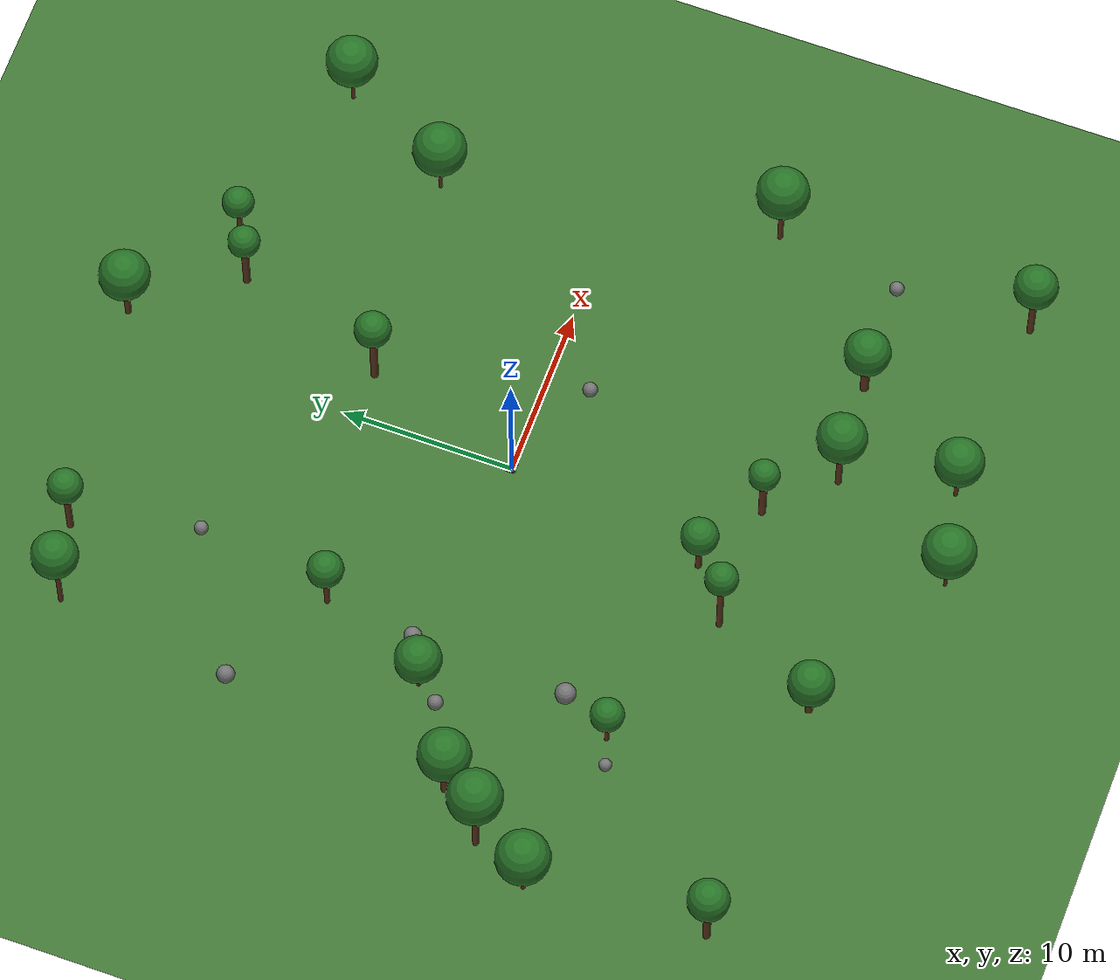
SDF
<?xml version="1.0"?>
<sdf version="1.6">
  <world name="forest_world">
    <include><uri>model://sun</uri></include>

    <scene>
      <ambient>0.5 0.55 0.5 1</ambient>
      <background>0.7 0.8 0.9 1</background>
      <shadows>false</shadows>
    </scene>

    <!-- grass ground -->
    <model name="ground_plane">
      <static>true</static>
      <link name="link">
        <collision name="collision">
          <geometry><plane><normal>0 0 1</normal><size>200 200</size></plane></geometry>
        </collision>
        <visual name="visual">
          <geometry><plane><normal>0 0 1</normal><size>200 200</size></plane></geometry>
          <material>
            <ambient>0.2 0.35 0.15 1</ambient>
            <diffuse>0.25 0.45 0.2 1</diffuse>
          </material>
        </visual>
      </link>
    </model>
    <model name="tree_0">
      <static>true</static>
      <pose>6.97 -23.75 0 0 0 3.69</pose>
      <link name="trunk">
        <pose>0 0 1.66 0 0 0</pose>
        <collision name="c"><geometry><cylinder><radius>0.13</radius><length>3.33</length></cylinder></geometry></collision>
        <visual name="v"><geometry><cylinder><radius>0.13</radius><length>3.33</length></cylinder></geometry>
          <material><ambient>0.25 0.15 0.08 1</ambient><diffuse>0.35 0.2 0.1 1</diffuse></material></visual>
      </link>
      <link name="canopy">
        <pose>0 0 4.17 0 0 0</pose>
        <visual name="v"><geometry><sphere><radius>1.42</radius></sphere></geometry>
          <material><ambient>0.1 0.3 0.1 1</ambient><diffuse>0.15 0.45 0.15 1</diffuse></material></visual>
      </link>
    </model>
    <model name="tree_1">
      <static>true</static>
      <pose>8.83 19.61 0 0 0 1.45</pose>
      <link name="trunk">
        <pose>0 0 1.38 0 0 0</pose>
        <collision name="c"><geometry><cylinder><radius>0.16</radius><length>2.76</length></cylinder></geometry></collision>
        <visual name="v"><geometry><cylinder><radius>0.16</radius><length>2.76</length></cylinder></geometry>
          <material><ambient>0.25 0.15 0.08 1</ambient><diffuse>0.35 0.2 0.1 1</diffuse></material></visual>
      </link>
      <link name="canopy">
        <pose>0 0 3.31 0 0 0</pose>
        <visual name="v"><geometry><sphere><radius>0.92</radius></sphere></geometry>
          <material><ambient>0.1 0.3 0.1 1</ambient><diffuse>0.15 0.45 0.15 1</diffuse></material></visual>
      </link>
    </model>
    <model name="tree_2">
      <static>true</static>
      <pose>-14.07 0.27 0 0 0 1.38</pose>
      <link name="trunk">
        <pose>0 0 1.29 0 0 0</pose>
        <collision name="c"><geometry><cylinder><radius>0.13</radius><length>2.58</length></cylinder></geometry></collision>
        <visual name="v"><geometry><cylinder><radius>0.13</radius><length>2.58</length></cylinder></geometry>
          <material><ambient>0.25 0.15 0.08 1</ambient><diffuse>0.35 0.2 0.1 1</diffuse></material></visual>
      </link>
      <link name="canopy">
        <pose>0 0 3.39 0 0 0</pose>
        <visual name="v"><geometry><sphere><radius>1.35</radius></sphere></geometry>
          <material><ambient>0.1 0.3 0.1 1</ambient><diffuse>0.15 0.45 0.15 1</diffuse></material></visual>
      </link>
    </model>
    <model name="tree_3">
      <static>true</static>
      <pose>2.25 -13.98 0 0 0 0.45</pose>
      <link name="trunk">
        <pose>0 0 2.13 0 0 0</pose>
        <collision name="c"><geometry><cylinder><radius>0.22</radius><length>4.27</length></cylinder></geometry></collision>
        <visual name="v"><geometry><cylinder><radius>0.22</radius><length>4.27</length></cylinder></geometry>
          <material><ambient>0.25 0.15 0.08 1</ambient><diffuse>0.35 0.2 0.1 1</diffuse></material></visual>
      </link>
      <link name="canopy">
        <pose>0 0 4.81 0 0 0</pose>
        <visual name="v"><geometry><sphere><radius>0.90</radius></sphere></geometry>
          <material><ambient>0.1 0.3 0.1 1</ambient><diffuse>0.15 0.45 0.15 1</diffuse></material></visual>
      </link>
    </model>
    <model name="tree_4">
      <static>true</static>
      <pose>15.29 9.91 0 0 0 3.96</pose>
      <link name="trunk">
        <pose>0 0 1.76 0 0 0</pose>
        <collision name="c"><geometry><cylinder><radius>0.12</radius><length>3.52</length></cylinder></geometry></collision>
        <visual name="v"><geometry><cylinder><radius>0.12</radius><length>3.52</length></cylinder></geometry>
          <material><ambient>0.25 0.15 0.08 1</ambient><diffuse>0.35 0.2 0.1 1</diffuse></material></visual>
      </link>
      <link name="canopy">
        <pose>0 0 4.46 0 0 0</pose>
        <visual name="v"><geometry><sphere><radius>1.57</radius></sphere></geometry>
          <material><ambient>0.1 0.3 0.1 1</ambient><diffuse>0.15 0.45 0.15 1</diffuse></material></visual>
      </link>
    </model>
    <model name="tree_5">
      <static>true</static>
      <pose>-8.17 -20.36 0 0 0 1.44</pose>
      <link name="trunk">
        <pose>0 0 1.40 0 0 0</pose>
        <collision name="c"><geometry><cylinder><radius>0.23</radius><length>2.79</length></cylinder></geometry></collision>
        <visual name="v"><geometry><cylinder><radius>0.23</radius><length>2.79</length></cylinder></geometry>
          <material><ambient>0.25 0.15 0.08 1</ambient><diffuse>0.35 0.2 0.1 1</diffuse></material></visual>
      </link>
      <link name="canopy">
        <pose>0 0 3.58 0 0 0</pose>
        <visual name="v"><geometry><sphere><radius>1.32</radius></sphere></geometry>
          <material><ambient>0.1 0.3 0.1 1</ambient><diffuse>0.15 0.45 0.15 1</diffuse></material></visual>
      </link>
    </model>
    <model name="tree_6">
      <static>true</static>
      <pose>1.81 23.66 0 0 0 5.69</pose>
      <link name="trunk">
        <pose>0 0 1.82 0 0 0</pose>
        <collision name="c"><geometry><cylinder><radius>0.18</radius><length>3.64</length></cylinder></geometry></collision>
        <visual name="v"><geometry><cylinder><radius>0.18</radius><length>3.64</length></cylinder></geometry>
          <material><ambient>0.25 0.15 0.08 1</ambient><diffuse>0.35 0.2 0.1 1</diffuse></material></visual>
      </link>
      <link name="canopy">
        <pose>0 0 4.52 0 0 0</pose>
        <visual name="v"><geometry><sphere><radius>1.48</radius></sphere></geometry>
          <material><ambient>0.1 0.3 0.1 1</ambient><diffuse>0.15 0.45 0.15 1</diffuse></material></visual>
      </link>
    </model>
    <model name="tree_7">
      <static>true</static>
      <pose>5.93 18.09 0 0 0 5.40</pose>
      <link name="trunk">
        <pose>0 0 2.12 0 0 0</pose>
        <collision name="c"><geometry><cylinder><radius>0.21</radius><length>4.23</length></cylinder></geometry></collision>
        <visual name="v"><geometry><cylinder><radius>0.21</radius><length>4.23</length></cylinder></geometry>
          <material><ambient>0.25 0.15 0.08 1</ambient><diffuse>0.35 0.2 0.1 1</diffuse></material></visual>
      </link>
      <link name="canopy">
        <pose>0 0 4.79 0 0 0</pose>
        <visual name="v"><geometry><sphere><radius>0.93</radius></sphere></geometry>
          <material><ambient>0.1 0.3 0.1 1</ambient><diffuse>0.15 0.45 0.15 1</diffuse></material></visual>
      </link>
    </model>
    <model name="tree_8">
      <static>true</static>
      <pose>-13.61 -10.53 0 0 0 0.44</pose>
      <link name="trunk">
        <pose>0 0 1.37 0 0 0</pose>
        <collision name="c"><geometry><cylinder><radius>0.13</radius><length>2.74</length></cylinder></geometry></collision>
        <visual name="v"><geometry><cylinder><radius>0.13</radius><length>2.74</length></cylinder></geometry>
          <material><ambient>0.25 0.15 0.08 1</ambient><diffuse>0.35 0.2 0.1 1</diffuse></material></visual>
      </link>
      <link name="canopy">
        <pose>0 0 3.32 0 0 0</pose>
        <visual name="v"><geometry><sphere><radius>0.97</radius></sphere></geometry>
          <material><ambient>0.1 0.3 0.1 1</ambient><diffuse>0.15 0.45 0.15 1</diffuse></material></visual>
      </link>
    </model>
    <model name="tree_9">
      <static>true</static>
      <pose>-11.10 6.78 0 0 0 1.49</pose>
      <link name="trunk">
        <pose>0 0 1.80 0 0 0</pose>
        <collision name="c"><geometry><cylinder><radius>0.16</radius><length>3.59</length></cylinder></geometry></collision>
        <visual name="v"><geometry><cylinder><radius>0.16</radius><length>3.59</length></cylinder></geometry>
          <material><ambient>0.25 0.15 0.08 1</ambient><diffuse>0.35 0.2 0.1 1</diffuse></material></visual>
      </link>
      <link name="canopy">
        <pose>0 0 4.22 0 0 0</pose>
        <visual name="v"><geometry><sphere><radius>1.05</radius></sphere></geometry>
          <material><ambient>0.1 0.3 0.1 1</ambient><diffuse>0.15 0.45 0.15 1</diffuse></material></visual>
      </link>
    </model>
    <model name="tree_10">
      <static>true</static>
      <pose>-11.65 21.83 0 0 0 4.20</pose>
      <link name="trunk">
        <pose>0 0 2.22 0 0 0</pose>
        <collision name="c"><geometry><cylinder><radius>0.19</radius><length>4.44</length></cylinder></geometry></collision>
        <visual name="v"><geometry><cylinder><radius>0.19</radius><length>4.44</length></cylinder></geometry>
          <material><ambient>0.25 0.15 0.08 1</ambient><diffuse>0.35 0.2 0.1 1</diffuse></material></visual>
      </link>
      <link name="canopy">
        <pose>0 0 5.06 0 0 0</pose>
        <visual name="v"><geometry><sphere><radius>1.02</radius></sphere></geometry>
          <material><ambient>0.1 0.3 0.1 1</ambient><diffuse>0.15 0.45 0.15 1</diffuse></material></visual>
      </link>
    </model>
    <model name="tree_11">
      <static>true</static>
      <pose>11.46 -16.83 0 0 0 1.35</pose>
      <link name="trunk">
        <pose>0 0 1.82 0 0 0</pose>
        <collision name="c"><geometry><cylinder><radius>0.25</radius><length>3.64</length></cylinder></geometry></collision>
        <visual name="v"><geometry><cylinder><radius>0.25</radius><length>3.64</length></cylinder></geometry>
          <material><ambient>0.25 0.15 0.08 1</ambient><diffuse>0.35 0.2 0.1 1</diffuse></material></visual>
      </link>
      <link name="canopy">
        <pose>0 0 4.45 0 0 0</pose>
        <visual name="v"><geometry><sphere><radius>1.35</radius></sphere></geometry>
          <material><ambient>0.1 0.3 0.1 1</ambient><diffuse>0.15 0.45 0.15 1</diffuse></material></visual>
      </link>
    </model>
    <model name="tree_12">
      <static>true</static>
      <pose>2.85 9.23 0 0 0 0.83</pose>
      <link name="trunk">
        <pose>0 0 2.51 0 0 0</pose>
        <collision name="c"><geometry><cylinder><radius>0.22</radius><length>5.03</length></cylinder></geometry></collision>
        <visual name="v"><geometry><cylinder><radius>0.22</radius><length>5.03</length></cylinder></geometry>
          <material><ambient>0.25 0.15 0.08 1</ambient><diffuse>0.35 0.2 0.1 1</diffuse></material></visual>
      </link>
      <link name="canopy">
        <pose>0 0 5.66 0 0 0</pose>
        <visual name="v"><geometry><sphere><radius>1.06</radius></sphere></geometry>
          <material><ambient>0.1 0.3 0.1 1</ambient><diffuse>0.15 0.45 0.15 1</diffuse></material></visual>
      </link>
    </model>
    <model name="tree_13">
      <static>true</static>
      <pose>-23.39 -9.23 0 0 0 5.88</pose>
      <link name="trunk">
        <pose>0 0 1.65 0 0 0</pose>
        <collision name="c"><geometry><cylinder><radius>0.13</radius><length>3.30</length></cylinder></geometry></collision>
        <visual name="v"><geometry><cylinder><radius>0.13</radius><length>3.30</length></cylinder></geometry>
          <material><ambient>0.25 0.15 0.08 1</ambient><diffuse>0.35 0.2 0.1 1</diffuse></material></visual>
      </link>
      <link name="canopy">
        <pose>0 0 4.24 0 0 0</pose>
        <visual name="v"><geometry><sphere><radius>1.56</radius></sphere></geometry>
          <material><ambient>0.1 0.3 0.1 1</ambient><diffuse>0.15 0.45 0.15 1</diffuse></material></visual>
      </link>
    </model>
    <model name="tree_14">
      <static>true</static>
      <pose>18.82 -9.27 0 0 0 3.59</pose>
      <link name="trunk">
        <pose>0 0 2.23 0 0 0</pose>
        <collision name="c"><geometry><cylinder><radius>0.16</radius><length>4.47</length></cylinder></geometry></collision>
        <visual name="v"><geometry><cylinder><radius>0.16</radius><length>4.47</length></cylinder></geometry>
          <material><ambient>0.25 0.15 0.08 1</ambient><diffuse>0.35 0.2 0.1 1</diffuse></material></visual>
      </link>
      <link name="canopy">
        <pose>0 0 5.39 0 0 0</pose>
        <visual name="v"><geometry><sphere><radius>1.54</radius></sphere></geometry>
          <material><ambient>0.1 0.3 0.1 1</ambient><diffuse>0.15 0.45 0.15 1</diffuse></material></visual>
      </link>
    </model>
    <model name="tree_15">
      <static>true</static>
      <pose>-2.06 -11.76 0 0 0 2.97</pose>
      <link name="trunk">
        <pose>0 0 1.62 0 0 0</pose>
        <collision name="c"><geometry><cylinder><radius>0.18</radius><length>3.24</length></cylinder></geometry></collision>
        <visual name="v"><geometry><cylinder><radius>0.18</radius><length>3.24</length></cylinder></geometry>
          <material><ambient>0.25 0.15 0.08 1</ambient><diffuse>0.35 0.2 0.1 1</diffuse></material></visual>
      </link>
      <link name="canopy">
        <pose>0 0 3.89 0 0 0</pose>
        <visual name="v"><geometry><sphere><radius>1.08</radius></sphere></geometry>
          <material><ambient>0.1 0.3 0.1 1</ambient><diffuse>0.15 0.45 0.15 1</diffuse></material></visual>
      </link>
    </model>
    <model name="tree_16">
      <static>true</static>
      <pose>-5.03 -14.03 0 0 0 4.93</pose>
      <link name="trunk">
        <pose>0 0 2.75 0 0 0</pose>
        <collision name="c"><geometry><cylinder><radius>0.18</radius><length>5.49</length></cylinder></geometry></collision>
        <visual name="v"><geometry><cylinder><radius>0.18</radius><length>5.49</length></cylinder></geometry>
          <material><ambient>0.25 0.15 0.08 1</ambient><diffuse>0.35 0.2 0.1 1</diffuse></material></visual>
      </link>
      <link name="canopy">
        <pose>0 0 6.07 0 0 0</pose>
        <visual name="v"><geometry><sphere><radius>0.96</radius></sphere></geometry>
          <material><ambient>0.1 0.3 0.1 1</ambient><diffuse>0.15 0.45 0.15 1</diffuse></material></visual>
      </link>
    </model>
    <model name="tree_17">
      <static>true</static>
      <pose>-22.64 -19.52 0 0 0 5.07</pose>
      <link name="trunk">
        <pose>0 0 2.19 0 0 0</pose>
        <collision name="c"><geometry><cylinder><radius>0.22</radius><length>4.38</length></cylinder></geometry></collision>
        <visual name="v"><geometry><cylinder><radius>0.22</radius><length>4.38</length></cylinder></geometry>
          <material><ambient>0.25 0.15 0.08 1</ambient><diffuse>0.35 0.2 0.1 1</diffuse></material></visual>
      </link>
      <link name="canopy">
        <pose>0 0 5.10 0 0 0</pose>
        <visual name="v"><geometry><sphere><radius>1.20</radius></sphere></geometry>
          <material><ambient>0.1 0.3 0.1 1</ambient><diffuse>0.15 0.45 0.15 1</diffuse></material></visual>
      </link>
    </model>
    <model name="tree_18">
      <static>true</static>
      <pose>-21.82 -5.92 0 0 0 1.20</pose>
      <link name="trunk">
        <pose>0 0 2.74 0 0 0</pose>
        <collision name="c"><geometry><cylinder><radius>0.18</radius><length>5.49</length></cylinder></geometry></collision>
        <visual name="v"><geometry><cylinder><radius>0.18</radius><length>5.49</length></cylinder></geometry>
          <material><ambient>0.25 0.15 0.08 1</ambient><diffuse>0.35 0.2 0.1 1</diffuse></material></visual>
      </link>
      <link name="canopy">
        <pose>0 0 6.44 0 0 0</pose>
        <visual name="v"><geometry><sphere><radius>1.58</radius></sphere></geometry>
          <material><ambient>0.1 0.3 0.1 1</ambient><diffuse>0.15 0.45 0.15 1</diffuse></material></visual>
      </link>
    </model>
    <model name="tree_19">
      <static>true</static>
      <pose>18.04 -24.43 0 0 0 0.61</pose>
      <link name="trunk">
        <pose>0 0 2.33 0 0 0</pose>
        <collision name="c"><geometry><cylinder><radius>0.20</radius><length>4.66</length></cylinder></geometry></collision>
        <visual name="v"><geometry><cylinder><radius>0.20</radius><length>4.66</length></cylinder></geometry>
          <material><ambient>0.25 0.15 0.08 1</ambient><diffuse>0.35 0.2 0.1 1</diffuse></material></visual>
      </link>
      <link name="canopy">
        <pose>0 0 5.43 0 0 0</pose>
        <visual name="v"><geometry><sphere><radius>1.28</radius></sphere></geometry>
          <material><ambient>0.1 0.3 0.1 1</ambient><diffuse>0.15 0.45 0.15 1</diffuse></material></visual>
      </link>
    </model>
    <model name="tree_20">
      <static>true</static>
      <pose>-19.42 -3.26 0 0 0 2.71</pose>
      <link name="trunk">
        <pose>0 0 1.93 0 0 0</pose>
        <collision name="c"><geometry><cylinder><radius>0.24</radius><length>3.86</length></cylinder></geometry></collision>
        <visual name="v"><geometry><cylinder><radius>0.24</radius><length>3.86</length></cylinder></geometry>
          <material><ambient>0.25 0.15 0.08 1</ambient><diffuse>0.35 0.2 0.1 1</diffuse></material></visual>
      </link>
      <link name="canopy">
        <pose>0 0 4.77 0 0 0</pose>
        <visual name="v"><geometry><sphere><radius>1.51</radius></sphere></geometry>
          <material><ambient>0.1 0.3 0.1 1</ambient><diffuse>0.15 0.45 0.15 1</diffuse></material></visual>
      </link>
    </model>
    <model name="tree_21">
      <static>true</static>
      <pose>-16.07 20.63 0 0 0 2.66</pose>
      <link name="trunk">
        <pose>0 0 2.56 0 0 0</pose>
        <collision name="c"><geometry><cylinder><radius>0.14</radius><length>5.11</length></cylinder></geometry></collision>
        <visual name="v"><geometry><cylinder><radius>0.14</radius><length>5.11</length></cylinder></geometry>
          <material><ambient>0.25 0.15 0.08 1</ambient><diffuse>0.35 0.2 0.1 1</diffuse></material></visual>
      </link>
      <link name="canopy">
        <pose>0 0 5.92 0 0 0</pose>
        <visual name="v"><geometry><sphere><radius>1.35</radius></sphere></geometry>
          <material><ambient>0.1 0.3 0.1 1</ambient><diffuse>0.15 0.45 0.15 1</diffuse></material></visual>
      </link>
    </model>
    <model name="tree_22">
      <static>true</static>
      <pose>5.45 -17.36 0 0 0 2.93</pose>
      <link name="trunk">
        <pose>0 0 2.39 0 0 0</pose>
        <collision name="c"><geometry><cylinder><radius>0.18</radius><length>4.79</length></cylinder></geometry></collision>
        <visual name="v"><geometry><cylinder><radius>0.18</radius><length>4.79</length></cylinder></geometry>
          <material><ambient>0.25 0.15 0.08 1</ambient><diffuse>0.35 0.2 0.1 1</diffuse></material></visual>
      </link>
      <link name="canopy">
        <pose>0 0 5.65 0 0 0</pose>
        <visual name="v"><geometry><sphere><radius>1.45</radius></sphere></geometry>
          <material><ambient>0.1 0.3 0.1 1</ambient><diffuse>0.15 0.45 0.15 1</diffuse></material></visual>
      </link>
    </model>
    <model name="tree_23">
      <static>true</static>
      <pose>1.52 -24.97 0 0 0 4.58</pose>
      <link name="trunk">
        <pose>0 0 1.74 0 0 0</pose>
        <collision name="c"><geometry><cylinder><radius>0.10</radius><length>3.47</length></cylinder></geometry></collision>
        <visual name="v"><geometry><cylinder><radius>0.10</radius><length>3.47</length></cylinder></geometry>
          <material><ambient>0.25 0.15 0.08 1</ambient><diffuse>0.35 0.2 0.1 1</diffuse></material></visual>
      </link>
      <link name="canopy">
        <pose>0 0 4.40 0 0 0</pose>
        <visual name="v"><geometry><sphere><radius>1.55</radius></sphere></geometry>
          <material><ambient>0.1 0.3 0.1 1</ambient><diffuse>0.15 0.45 0.15 1</diffuse></material></visual>
      </link>
    </model>
    <model name="tree_24">
      <static>true</static>
      <pose>18.94 16.58 0 0 0 4.23</pose>
      <link name="trunk">
        <pose>0 0 1.71 0 0 0</pose>
        <collision name="c"><geometry><cylinder><radius>0.11</radius><length>3.42</length></cylinder></geometry></collision>
        <visual name="v"><geometry><cylinder><radius>0.11</radius><length>3.42</length></cylinder></geometry>
          <material><ambient>0.25 0.15 0.08 1</ambient><diffuse>0.35 0.2 0.1 1</diffuse></material></visual>
      </link>
      <link name="canopy">
        <pose>0 0 4.33 0 0 0</pose>
        <visual name="v"><geometry><sphere><radius>1.51</radius></sphere></geometry>
          <material><ambient>0.1 0.3 0.1 1</ambient><diffuse>0.15 0.45 0.15 1</diffuse></material></visual>
      </link>
    </model>
    <model name="rock_0">
      <static>true</static>
      <pose>17.88 -16.57 0.21 0 0 0</pose>
      <link name="link">
        <collision name="c"><geometry><sphere><radius>0.42</radius></sphere></geometry></collision>
        <visual name="v"><geometry><sphere><radius>0.42</radius></sphere></geometry>
          <material><ambient>0.35 0.35 0.35 1</ambient><diffuse>0.45 0.45 0.45 1</diffuse></material></visual>
      </link>
    </model>
    <model name="rock_1">
      <static>true</static>
      <pose>-17.23 10.42 0.26 0 0 0</pose>
      <link name="link">
        <collision name="c"><geometry><sphere><radius>0.52</radius></sphere></geometry></collision>
        <visual name="v"><geometry><sphere><radius>0.52</radius></sphere></geometry>
          <material><ambient>0.35 0.35 0.35 1</ambient><diffuse>0.45 0.45 0.45 1</diffuse></material></visual>
      </link>
    </model>
    <model name="rock_2">
      <static>true</static>
      <pose>-14.86 -0.99 0.22 0 0 0</pose>
      <link name="link">
        <collision name="c"><geometry><sphere><radius>0.44</radius></sphere></geometry></collision>
        <visual name="v"><geometry><sphere><radius>0.44</radius></sphere></geometry>
          <material><ambient>0.35 0.35 0.35 1</ambient><diffuse>0.45 0.45 0.45 1</diffuse></material></visual>
      </link>
    </model>
    <model name="rock_3">
      <static>true</static>
      <pose>-9.40 14.90 0.20 0 0 0</pose>
      <link name="link">
        <collision name="c"><geometry><sphere><radius>0.40</radius></sphere></geometry></collision>
        <visual name="v"><geometry><sphere><radius>0.40</radius></sphere></geometry>
          <material><ambient>0.35 0.35 0.35 1</ambient><diffuse>0.45 0.45 0.45 1</diffuse></material></visual>
      </link>
    </model>
    <model name="rock_4">
      <static>true</static>
      <pose>-11.53 1.57 0.25 0 0 0</pose>
      <link name="link">
        <collision name="c"><geometry><sphere><radius>0.51</radius></sphere></geometry></collision>
        <visual name="v"><geometry><sphere><radius>0.51</radius></sphere></geometry>
          <material><ambient>0.35 0.35 0.35 1</ambient><diffuse>0.45 0.45 0.45 1</diffuse></material></visual>
      </link>
    </model>
    <model name="rock_5">
      <static>true</static>
      <pose>-11.95 -7.53 0.30 0 0 0</pose>
      <link name="link">
        <collision name="c"><geometry><sphere><radius>0.60</radius></sphere></geometry></collision>
        <visual name="v"><geometry><sphere><radius>0.60</radius></sphere></geometry>
          <material><ambient>0.35 0.35 0.35 1</ambient><diffuse>0.45 0.45 0.45 1</diffuse></material></visual>
      </link>
    </model>
    <model name="rock_6">
      <static>true</static>
      <pose>6.00 -2.48 0.22 0 0 0</pose>
      <link name="link">
        <collision name="c"><geometry><sphere><radius>0.43</radius></sphere></geometry></collision>
        <visual name="v"><geometry><sphere><radius>0.43</radius></sphere></geometry>
          <material><ambient>0.35 0.35 0.35 1</ambient><diffuse>0.45 0.45 0.45 1</diffuse></material></visual>
      </link>
    </model>
    <model name="rock_7">
      <static>true</static>
      <pose>-15.16 -11.01 0.18 0 0 0</pose>
      <link name="link">
        <collision name="c"><geometry><sphere><radius>0.37</radius></sphere></geometry></collision>
        <visual name="v"><geometry><sphere><radius>0.37</radius></sphere></geometry>
          <material><ambient>0.35 0.35 0.35 1</ambient><diffuse>0.45 0.45 0.45 1</diffuse></material></visual>
      </link>
    </model>

    <!-- Spawn rover at origin (clearing) -->
    <include>
      <uri>model://livo2_rover</uri>
      <pose>0 0 0.15 0 0 0</pose>
    </include>

  </world>
</sdf>

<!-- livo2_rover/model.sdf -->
<sdf version="1.6">
  <model name="livo2_rover">
    <static>false</static>

    <!-- ==================== CHASSIS ==================== -->
    <link name="base_link">
      <inertial>
        <mass>10.0</mass>
        <inertia>
          <ixx>0.5</ixx><ixy>0</ixy><ixz>0</ixz>
          <iyy>1.0</iyy><iyz>0</iyz>
          <izz>0.5</izz>
        </inertia>
      </inertial>
      <collision name="chassis_collision">
        <geometry>
          <box><size>0.6 0.4 0.15</size></box>
        </geometry>
      </collision>
      <visual name="chassis_visual">
        <geometry>
          <box><size>0.6 0.4 0.15</size></box>
        </geometry>
        <material>
          <ambient>0.2 0.2 0.2 1</ambient>
          <diffuse>0.3 0.3 0.3 1</diffuse>
        </material>
      </visual>

      <!-- ==================== IMU SENSOR ==================== -->
      <sensor name="imu_sensor" type="imu">
        <always_on>true</always_on>
        <update_rate>200</update_rate>
        <imu>
          <angular_velocity>
            <x><noise type="gaussian"><mean>0.0</mean><stddev>0.003</stddev></noise></x>
            <y><noise type="gaussian"><mean>0.0</mean><stddev>0.003</stddev></noise></y>
            <z><noise type="gaussian"><mean>0.0</mean><stddev>0.003</stddev></noise></z>
          </angular_velocity>
          <linear_acceleration>
            <x><noise type="gaussian"><mean>0.0</mean><stddev>0.05</stddev></noise></x>
            <y><noise type="gaussian"><mean>0.0</mean><stddev>0.05</stddev></noise></y>
            <z><noise type="gaussian"><mean>0.0</mean><stddev>0.05</stddev></noise></z>
          </linear_acceleration>
        </imu>
        <plugin name="imu_plugin" filename="libgazebo_ros_imu_sensor.so">
          <topicName>/rover/imu</topicName>
          <bodyName>base_link</bodyName>
          <frameName>base_link</frameName>
          <updateRateHZ>200.0</updateRateHZ>
          <gaussianNoise>0.0</gaussianNoise>
          <xyzOffset>0 0 0</xyzOffset>
          <rpyOffset>0 0 0</rpyOffset>
        </plugin>
      </sensor>
    </link>

    <!-- ==================== WHEELS ==================== -->
    <!-- Front left wheel -->
    <link name="front_left_wheel">
      <pose>0.2 0.25 -0.05 -1.5708 0 0</pose>
      <inertial>
        <mass>0.5</mass>
        <inertia>
          <ixx>0.001</ixx><ixy>0</ixy><ixz>0</ixz>
          <iyy>0.001</iyy><iyz>0</iyz><izz>0.001</izz>
        </inertia>
      </inertial>
      <collision name="collision">
        <geometry><cylinder><radius>0.1</radius><length>0.05</length></cylinder></geometry>
        <surface>
          <friction><ode><mu>1.0</mu><mu2>1.0</mu2></ode></friction>
        </surface>
      </collision>
      <visual name="visual">
        <geometry><cylinder><radius>0.1</radius><length>0.05</length></cylinder></geometry>
        <material><ambient>0.1 0.1 0.1 1</ambient></material>
      </visual>
    </link>
    <joint name="front_left_wheel_joint" type="revolute">
      <parent>base_link</parent>
      <child>front_left_wheel</child>
      <axis><xyz>0 0 1</xyz></axis>
    </joint>

    <!-- Front right wheel -->
    <link name="front_right_wheel">
      <pose>0.2 -0.25 -0.05 -1.5708 0 0</pose>
      <inertial>
        <mass>0.5</mass>
        <inertia>
          <ixx>0.001</ixx><ixy>0</ixy><ixz>0</ixz>
          <iyy>0.001</iyy><iyz>0</iyz><izz>0.001</izz>
        </inertia>
      </inertial>
      <collision name="collision">
        <geometry><cylinder><radius>0.1</radius><length>0.05</length></cylinder></geometry>
        <surface>
          <friction><ode><mu>1.0</mu><mu2>1.0</mu2></ode></friction>
        </surface>
      </collision>
      <visual name="visual">
        <geometry><cylinder><radius>0.1</radius><length>0.05</length></cylinder></geometry>
        <material><ambient>0.1 0.1 0.1 1</ambient></material>
      </visual>
    </link>
    <joint name="front_right_wheel_joint" type="revolute">
      <parent>base_link</parent>
      <child>front_right_wheel</child>
      <axis><xyz>0 0 1</xyz></axis>
    </joint>

    <!-- Rear left wheel -->
    <link name="rear_left_wheel">
      <pose>-0.2 0.25 -0.05 -1.5708 0 0</pose>
      <inertial>
        <mass>0.5</mass>
        <inertia>
          <ixx>0.001</ixx><ixy>0</ixy><ixz>0</ixz>
          <iyy>0.001</iyy><iyz>0</iyz><izz>0.001</izz>
        </inertia>
      </inertial>
      <collision name="collision">
        <geometry><cylinder><radius>0.1</radius><length>0.05</length></cylinder></geometry>
        <surface>
          <friction><ode><mu>1.0</mu><mu2>1.0</mu2></ode></friction>
        </surface>
      </collision>
      <visual name="visual">
        <geometry><cylinder><radius>0.1</radius><length>0.05</length></cylinder></geometry>
        <material><ambient>0.1 0.1 0.1 1</ambient></material>
      </visual>
    </link>
    <joint name="rear_left_wheel_joint" type="revolute">
      <parent>base_link</parent>
      <child>rear_left_wheel</child>
      <axis><xyz>0 0 1</xyz></axis>
    </joint>

    <!-- Rear right wheel -->
    <link name="rear_right_wheel">
      <pose>-0.2 -0.25 -0.05 -1.5708 0 0</pose>
      <inertial>
        <mass>0.5</mass>
        <inertia>
          <ixx>0.001</ixx><ixy>0</ixy><ixz>0</ixz>
          <iyy>0.001</iyy><iyz>0</iyz><izz>0.001</izz>
        </inertia>
      </inertial>
      <collision name="collision">
        <geometry><cylinder><radius>0.1</radius><length>0.05</length></cylinder></geometry>
        <surface>
          <friction><ode><mu>1.0</mu><mu2>1.0</mu2></ode></friction>
        </surface>
      </collision>
      <visual name="visual">
        <geometry><cylinder><radius>0.1</radius><length>0.05</length></cylinder></geometry>
        <material><ambient>0.1 0.1 0.1 1</ambient></material>
      </visual>
    </link>
    <joint name="rear_right_wheel_joint" type="revolute">
      <parent>base_link</parent>
      <child>rear_right_wheel</child>
      <axis><xyz>0 0 1</xyz></axis>
    </joint>

    <!-- Differential drive plugin (ROS1 Noetic syntax) -->
    <plugin name="diff_drive" filename="libgazebo_ros_diff_drive.so">
      <updateRate>100</updateRate>
      <leftJoint>front_left_wheel_joint</leftJoint>
      <rightJoint>front_right_wheel_joint</rightJoint>
      <wheelSeparation>0.5</wheelSeparation>
      <wheelDiameter>0.2</wheelDiameter>
      <wheelTorque>20</wheelTorque>
      <wheelAcceleration>1.0</wheelAcceleration>
      <commandTopic>/rover/cmd_vel</commandTopic>
      <odometryTopic>/rover/odom</odometryTopic>
      <odometryFrame>odom</odometryFrame>
      <robotBaseFrame>base_link</robotBaseFrame>
      <publishOdom>true</publishOdom>
      <publishOdomTF>true</publishOdomTF>
      <publishWheelTF>false</publishWheelTF>
      <publishWheelJointState>false</publishWheelJointState>
      <legacyMode>false</legacyMode>
    </plugin>

    <!-- Second diff drive for rear wheels (slaved to front) -->
    <plugin name="rear_diff_drive" filename="libgazebo_ros_diff_drive.so">
      <updateRate>100</updateRate>
      <leftJoint>rear_left_wheel_joint</leftJoint>
      <rightJoint>rear_right_wheel_joint</rightJoint>
      <wheelSeparation>0.5</wheelSeparation>
      <wheelDiameter>0.2</wheelDiameter>
      <wheelTorque>20</wheelTorque>
      <wheelAcceleration>1.0</wheelAcceleration>
      <commandTopic>/rover/cmd_vel</commandTopic>
      <odometryTopic>/rover/rear_odom</odometryTopic>
      <odometryFrame>odom</odometryFrame>
      <robotBaseFrame>base_link</robotBaseFrame>
      <publishOdom>false</publishOdom>
      <publishOdomTF>false</publishOdomTF>
      <publishWheelTF>false</publishWheelTF>
      <legacyMode>false</legacyMode>
    </plugin>

    <!-- ==================== SENSOR MAST ==================== -->
    <link name="sensor_mast">
      <pose>0 0 0.175 0 0 0</pose>
      <inertial>
        <mass>0.3</mass>
        <inertia>
          <ixx>0.001</ixx><ixy>0</ixy><ixz>0</ixz>
          <iyy>0.001</iyy><iyz>0</iyz><izz>0.001</izz>
        </inertia>
      </inertial>
      <collision name="mast_collision">
        <geometry><cylinder><radius>0.03</radius><length>0.2</length></cylinder></geometry>
      </collision>
      <visual name="mast_visual">
        <geometry><cylinder><radius>0.03</radius><length>0.2</length></cylinder></geometry>
        <material><ambient>0.5 0.5 0.5 1</ambient></material>
      </visual>
    </link>
    <joint name="mast_joint" type="fixed">
      <parent>base_link</parent>
      <child>sensor_mast</child>
    </joint>

    <!-- ==================== VLP-16 LIDAR ==================== -->
    <link name="velodyne_link">
      <pose>0 0 0.32 0 0 0</pose>
      <inertial>
        <mass>0.83</mass>
        <inertia>
          <ixx>0.001</ixx><ixy>0</ixy><ixz>0</ixz>
          <iyy>0.001</iyy><iyz>0</iyz><izz>0.001</izz>
        </inertia>
      </inertial>
      <collision name="lidar_collision">
        <geometry><cylinder><radius>0.05</radius><length>0.07</length></cylinder></geometry>
      </collision>
      <visual name="lidar_visual">
        <geometry><cylinder><radius>0.05</radius><length>0.07</length></cylinder></geometry>
        <material>
          <ambient>0.0 0.0 0.8 1</ambient>
          <diffuse>0.0 0.0 0.8 1</diffuse>
        </material>
      </visual>

      <sensor name="velodyne" type="ray">
        <always_on>true</always_on>
        <visualize>false</visualize>
        <update_rate>10</update_rate>
        <ray>
          <scan>
            <horizontal>
              <samples>900</samples>
              <resolution>1</resolution>
              <min_angle>-3.14159</min_angle>
              <max_angle>3.14159</max_angle>
            </horizontal>
            <vertical>
              <samples>16</samples>
              <resolution>1</resolution>
              <min_angle>-0.261799</min_angle>
              <max_angle>0.261799</max_angle>
            </vertical>
          </scan>
          <range>
            <min>0.5</min>
            <max>100.0</max>
            <resolution>0.003</resolution>
          </range>
          <noise>
            <type>gaussian</type>
            <mean>0.0</mean>
            <stddev>0.005</stddev>
          </noise>
        </ray>
        <plugin name="velodyne_plugin" filename="libgazebo_ros_velodyne_laser.so">
          <topicName>/rover/velodyne_points</topicName>
          <frameName>velodyne_link</frameName>
          <min_range>0.5</min_range>
          <max_range>100.0</max_range>
          <gaussianNoise>0.005</gaussianNoise>
          <organize_cloud>false</organize_cloud>
        </plugin>
      </sensor>
    </link>
    <joint name="velodyne_joint" type="fixed">
      <parent>sensor_mast</parent>
      <child>velodyne_link</child>
    </joint>

    <!-- ==================== CAMERA ==================== -->
    <link name="camera_link">
      <pose>0.15 0 0.2 0 0 0</pose>
      <inertial>
        <mass>0.1</mass>
        <inertia>
          <ixx>0.0001</ixx><ixy>0</ixy><ixz>0</ixz>
          <iyy>0.0001</iyy><iyz>0</iyz><izz>0.0001</izz>
        </inertia>
      </inertial>
      <collision name="camera_collision">
        <geometry><box><size>0.04 0.08 0.04</size></box></geometry>
      </collision>
      <visual name="camera_visual">
        <geometry><box><size>0.04 0.08 0.04</size></box></geometry>
        <material>
          <ambient>0.8 0.0 0.0 1</ambient>
          <diffuse>0.8 0.0 0.0 1</diffuse>
        </material>
      </visual>

      <sensor name="camera" type="camera">
        <always_on>true</always_on>
        <visualize>false</visualize>
        <update_rate>20</update_rate>
        <camera>
          <horizontal_fov>1.3962634</horizontal_fov>
          <image>
            <width>640</width>
            <height>480</height>
            <format>R8G8B8</format>
          </image>
          <clip>
            <near>0.02</near>
            <far>300</far>
          </clip>
          <noise>
            <type>gaussian</type>
            <mean>0.0</mean>
            <stddev>0.007</stddev>
          </noise>
        </camera>
        <plugin name="camera_plugin" filename="libgazebo_ros_camera.so">
          <cameraName>rover_camera</cameraName>
          <imageTopicName>/rover/camera/image_raw</imageTopicName>
          <cameraInfoTopicName>/rover/camera/camera_info</cameraInfoTopicName>
          <frameName>camera_link</frameName>
          <alwaysOn>true</alwaysOn>
          <updateRate>20.0</updateRate>
          <hackBaseline>0.0</hackBaseline>
          <distortionK1>0.0</distortionK1>
          <distortionK2>0.0</distortionK2>
          <distortionK3>0.0</distortionK3>
          <distortionT1>0.0</distortionT1>
          <distortionT2>0.0</distortionT2>
        </plugin>
      </sensor>
    </link>
    <joint name="camera_joint" type="fixed">
      <parent>base_link</parent>
      <child>camera_link</child>
    </joint>

  </model>
</sdf>
